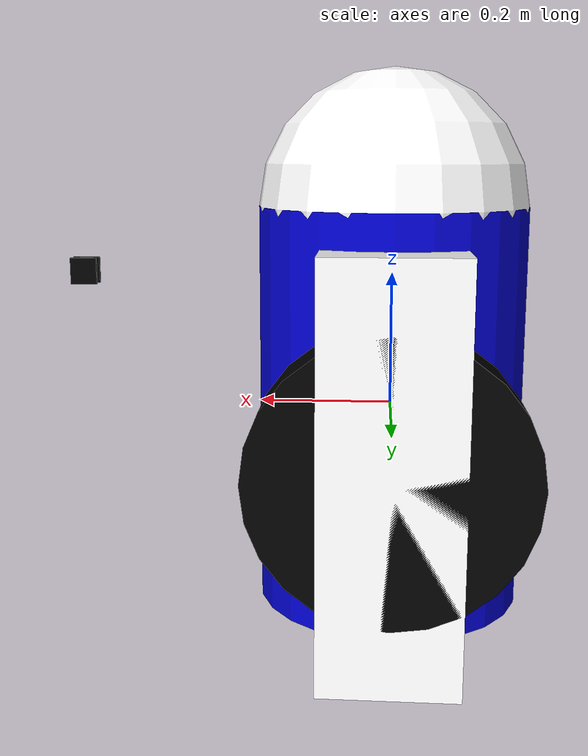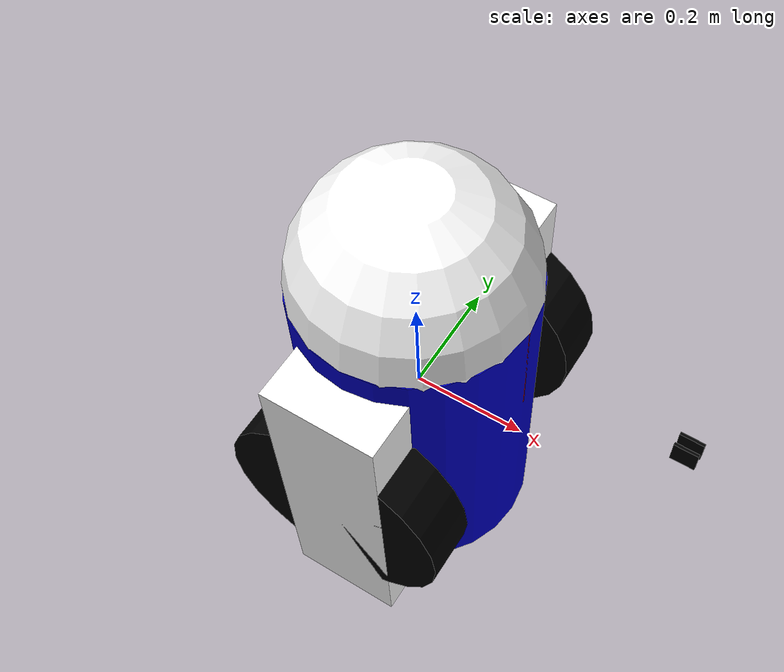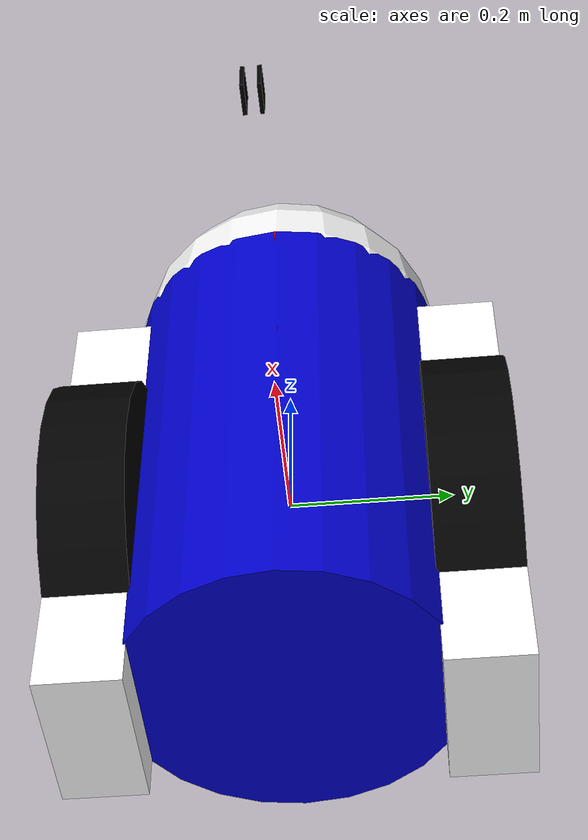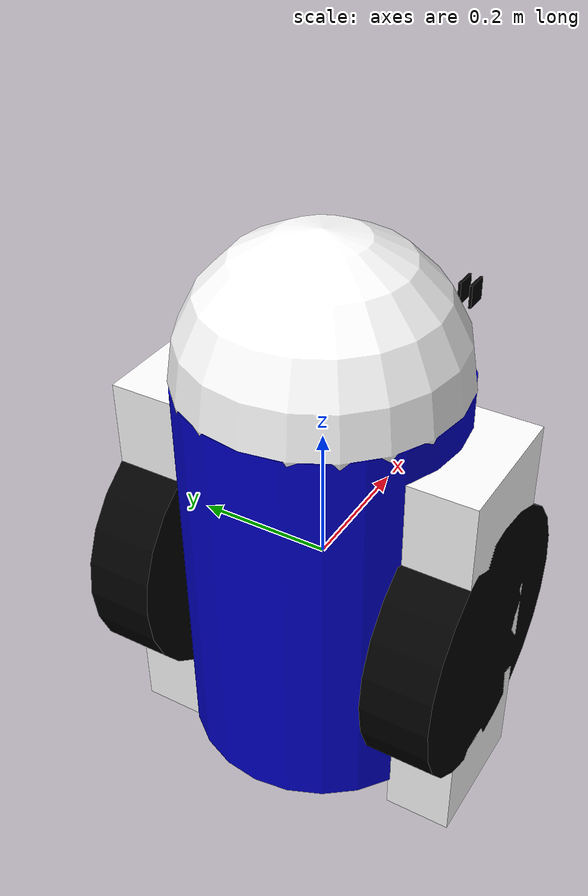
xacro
<?xml version="1.0"?>
<robot xmlns:xacro="http://www.ros.org/wiki/xacro" name="macroed">

  <!--  Xacro 常量 —— 改一个地方，所有引用都会自动更新                          -->
  <xacro:property name="width" value="0.2"/>      <!-- 身体半径 -->
  <xacro:property name="bodylen" value="0.6"/>     <!-- 身体长度 -->
  <xacro:property name="leglen" value="0.6"/>      <!-- 腿长 -->
  <xacro:property name="wheel_radius" value="0.2"/> <!-- 轮子半径 -->
  <xacro:property name="wheel_width" value="0.1"/> <!-- 轮子宽度 -->
  <xacro:property name="pole_length" value="0.2"/> <!-- 天线长度 -->
  <xacro:property name="pole_radius" value="0.01"/> <!-- 天线半径 -->
  <xacro:property name="head_radius" value="0.2"/> <!-- 头部半径 -->
  <xacro:property name="gripper_size" value="0.04"/> <!-- 夹爪尺寸 -->

  <!--  Xacro 宏 —— 默认惯量（给每个 link 一个安全的默认惯量）                   -->
  <xacro:macro name="default_inertial" params="mass">
    <inertial>
      <mass value="${mass}"/>
      <inertia ixx="0.001" ixy="0.0" ixz="0.0"
                        iyy="0.001" iyz="0.0"
                               izz="0.001"/>
    </inertial>
  </xacro:macro>

  <!--  Xacro 宏 —— 腿（用 reflect 参数实现镜像：1=右腿, -1=左腿）             -->
  <xacro:macro name="leg" params="prefix reflect">
    <link name="${prefix}_leg">
      <visual>
        <geometry>
          <box size="${leglen} 0.1 0.2"/>
        </geometry>
        <origin xyz="0 0 -${leglen/2}" rpy="0 ${pi/2} 0"/>
        <material name="white"/>
      </visual>
      <collision>
        <geometry>
          <box size="${leglen} 0.1 0.2"/>
        </geometry>
        <origin xyz="0 0 -${leglen/2}" rpy="0 ${pi/2} 0"/>
      </collision>
      <xacro:default_inertial mass="1"/>
    </link>

    <joint name="base_to_${prefix}_leg" type="fixed">
      <parent link="base_link"/>
      <child link="${prefix}_leg"/>
      <!-- reflect=1 → y=正 → 右腿；reflect=-1 → y=负 → 左腿 -->
      <origin xyz="0 ${reflect*(width+0.02)} 0.25"/>
    </joint>
  </xacro:macro>

  <!--  Xacro 宏 —— 轮子（同样用 reflect 做镜像）                             -->
  <xacro:macro name="wheel" params="prefix reflect">
    <link name="${prefix}_wheel">
      <visual>
        <origin rpy="${pi/2} 0 0" xyz="0 0 0"/>
        <geometry>
          <cylinder length="${wheel_width}" radius="${wheel_radius}"/>
        </geometry>
        <material name="black"/>
      </visual>
      <collision>
        <origin rpy="${pi/2} 0 0" xyz="0 0 0"/>
        <geometry>
          <cylinder length="${wheel_width}" radius="${wheel_radius}"/>
        </geometry>
      </collision>
      <xacro:default_inertial mass="0.5"/>
    </link>

    <joint name="${prefix}_wheel_joint" type="continuous">
      <parent link="base_link"/>
      <child link="${prefix}_wheel"/>
      <axis xyz="0 0 1"/>
      <origin rpy="0 0 0" xyz="0 ${reflect*(width+0.02)} -0.05"/>
      <dynamics damping="0.1" friction="1.0"/>
    </joint>
  </xacro:macro>

  <!--  Xacro 宏 —— 夹爪                                                    -->
  <xacro:macro name="gripper" params="prefix reflect">
    <link name="${prefix}_gripper">
      <visual>
        <origin rpy="0 ${pi/2} 0" xyz="0.08 0 0"/>
        <geometry>
          <box size="${gripper_size} 0.005 ${gripper_size}"/>
        </geometry>
        <material name="black"/>
      </visual>
      <collision>
        <origin rpy="0 ${pi/2} 0" xyz="0.08 0 0"/>
        <geometry>
          <box size="${gripper_size} 0.005 ${gripper_size}"/>
        </geometry>
      </collision>
      <xacro:default_inertial mass="0.05"/>
    </link>

    <joint name="${prefix}_gripper_joint" type="revolute">
      <axis xyz="0 0 1"/>
      <!-- 左爪 0→0.548，右爪 -0.548→0 -->
      <xacro:if value="${reflect == 1}">
        <limit effort="1000.0" lower="-0.548" upper="0" velocity="0.5"/>
      </xacro:if>
      <xacro:if value="${reflect == -1}">
        <limit effort="1000.0" lower="0.0" upper="0.548" velocity="0.5"/>
      </xacro:if>
      <origin rpy="0 0 0" xyz="0.2 ${reflect*0.01} 0"/>
      <parent link="gripper_pole"/>
      <child link="${prefix}_gripper"/>
      <dynamics damping="0.0" friction="0.0"/>
    </joint>
  </xacro:macro>

  <!--  颜色定义（不变）                                                      -->
  <material name="blue">
    <color rgba="0 0 0.8 1"/>
  </material>
  <material name="black">
    <color rgba="0 0 0 1"/>
  </material>
  <material name="white">
    <color rgba="1 1 1 1"/>
  </material>
  <material name="red">
    <color rgba="0.8 0 0 1"/>
  </material>

  <!--  LINKS（部件）                                                       -->

  <!-- 身体：蓝色圆柱体，参数从常量读取 -->
  <link name="base_link">
    <visual>
      <geometry>
        <cylinder radius="${width}" length="${bodylen}"/>
      </geometry>
      <material name="blue"/>
    </visual>
    <collision>
      <geometry>
        <cylinder radius="${width}" length="${bodylen}"/>
      </geometry>
    </collision>
    <inertial>
      <mass value="10"/>
      <!-- 圆柱体惯量公式：i=(1/12)*m*(3r²+h²) -->
      <inertia ixx="${10/12*(3*width*width+bodylen*bodylen)}" ixy="0.0" ixz="0.0"
                                iyy="${10/12*(3*width*width+bodylen*bodylen)}" iyz="0.0"
                                                       izz="${10/2*width*width}"/>
    </inertial>
  </link>

  <!-- 头部：白色球体 -->
  <link name="head">
    <visual>
      <geometry>
        <sphere radius="${head_radius}"/>
      </geometry>
      <material name="white"/>
    </visual>
    <collision>
      <geometry>
        <sphere radius="${head_radius}"/>
      </geometry>
    </collision>
    <xacro:default_inertial mass="2"/>
  </link>

  <!-- 夹爪伸缩杆：红色细柱 -->
  <link name="gripper_pole">
    <visual>
      <origin xyz="0 0 0" rpy="0 0 0"/>
      <geometry>
        <cylinder length="${pole_length}" radius="${pole_radius}"/>
      </geometry>
      <material name="red"/>
    </visual>
    <collision>
      <origin xyz="0 0 0" rpy="0 0 0"/>
      <geometry>
        <cylinder length="${pole_length}" radius="${pole_radius}"/>
      </geometry>
    </collision>
    <xacro:default_inertial mass="0.1"/>
  </link>

  <!--  用宏批量生成对称部件！（一行搞定左右）                                   -->
  <xacro:leg prefix="right" reflect="1"/>
  <xacro:leg prefix="left" reflect="-1"/>

  <xacro:wheel prefix="right" reflect="1"/>
  <xacro:wheel prefix="left" reflect="-1"/>

  <xacro:gripper prefix="right" reflect="1"/>
  <xacro:gripper prefix="left" reflect="-1"/>

  <!--  JOINTS（关节）—— 不可对称的单独写                                      -->

  <joint name="head_swivel" type="continuous">
    <parent link="base_link"/>
    <child link="head"/>
    <axis xyz="0 0 1"/>
    <origin xyz="0 0 ${bodylen/2}"/>   <!-- 身体长度的一半 = 0.3 -->
    <dynamics damping="0.0" friction="0.0"/>
  </joint>

  <joint name="gripper_extension" type="prismatic">
    <parent link="base_link"/>
    <child link="gripper_pole"/>
    <limit effort="1000.0" lower="-${bodylen*0.63}" upper="0" velocity="0.5"/>
    <origin rpy="0 0 0" xyz="${width-0.01} 0 ${bodylen/3}"/>
    <dynamics damping="0.0" friction="0.0"/>
  </joint>

</robot>
